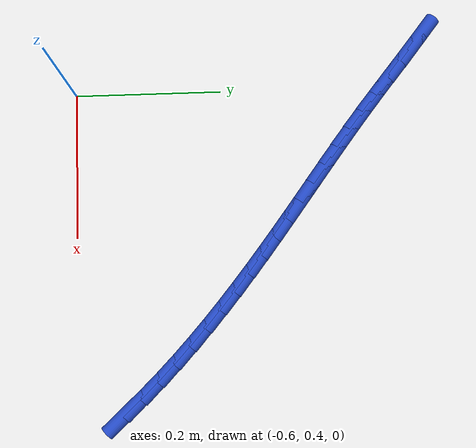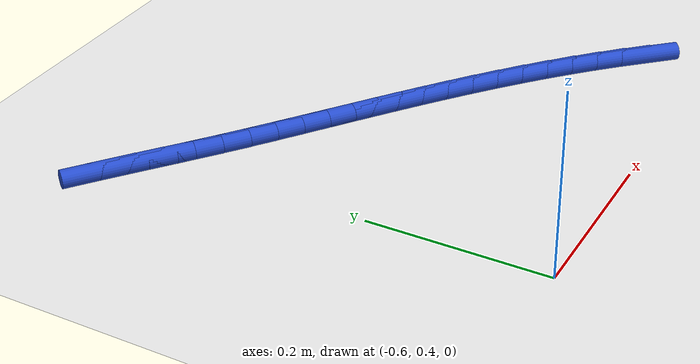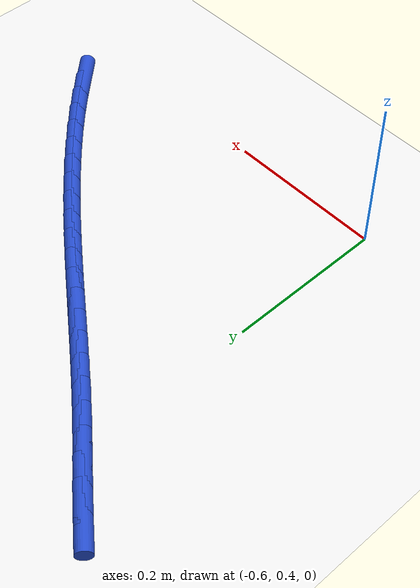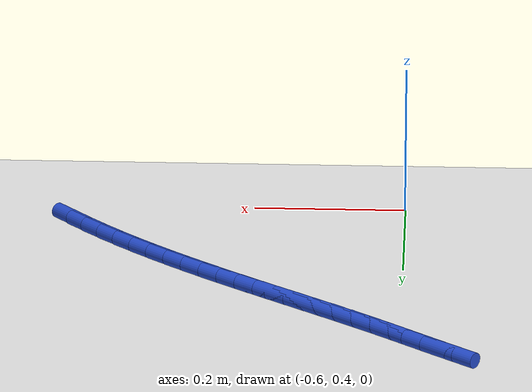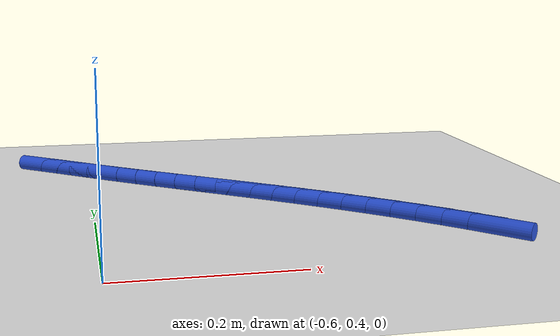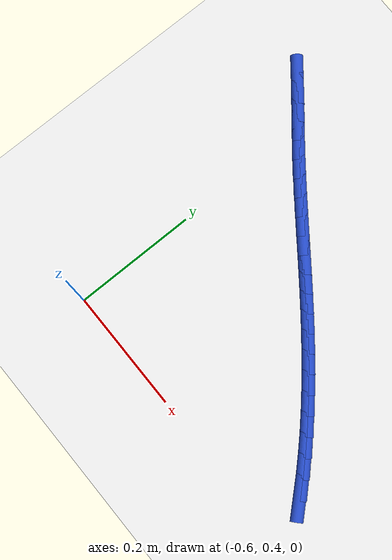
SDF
<sdf version="1.6">
 <world name="default">
  <model name="ground_plane">
   <static>1</static>
   <link name="link">
    <collision name="collision">
     <geometry><plane><normal>0 0 1</normal><size>100 100</size></plane></geometry>
     <surface><friction><ode><mu>100</mu><mu2>50</mu2></ode></friction></surface>
    </collision>
    <visual name="visual">
     <cast_shadows>0</cast_shadows>
     <geometry><plane><normal>0 0 1</normal><size>100 100</size></plane></geometry>
     <material>
      <script><uri>file://media/materials/scripts/gazebo.material</uri><name>Gazebo/WhiteGlow</name></script>
     </material>
    </visual>
   </link>
  </model>
  <model name="line">
   <link name="link_17">
    <pose>-0.16834287819457538 0.4694930249978393 0.01 0 1.57 -0.825687221884039</pose>
    <collision name="collision">
     <geometry><cylinder><radius>0.01</radius><length>0.08</length></cylinder></geometry>
    </collision>
    <visual name="visual">
     <material>
      <script><name>Gazebo/Blue</name><uri>file://media/materials/scripts/gazebo.material</uri></script>
     </material>
     <geometry><cylinder><radius>0.01</radius><length>0.08</length></cylinder></geometry>
    </visual>
   </link>
   <link name="link_18">
    <pose>-0.1893231760604147 0.4922358396481916 0.01 0 1.57 -0.7965220499734265</pose>
    <collision name="collision">
     <geometry><cylinder><radius>0.01</radius><length>0.08</length></cylinder></geometry>
    </collision>
    <visual name="visual">
     <material>
      <script><name>Gazebo/Blue</name><uri>file://media/materials/scripts/gazebo.material</uri></script>
     </material>
     <geometry><cylinder><radius>0.01</radius><length>0.08</length></cylinder></geometry>
    </visual>
   </link>
   <link name="link_19">
    <pose>-0.2110319275925236 0.5144330158870337 0.01 0 1.57 -0.7700032238204607</pose>
    <collision name="collision">
     <geometry><cylinder><radius>0.01</radius><length>0.08</length></cylinder></geometry>
    </collision>
    <visual name="visual">
     <material>
      <script><name>Gazebo/Blue</name><uri>file://media/materials/scripts/gazebo.material</uri></script>
     </material>
     <geometry><cylinder><radius>0.01</radius><length>0.08</length></cylinder></geometry>
    </visual>
   </link>
   <link name="link_20">
    <pose>-0.2333680721841166 0.5360918075801652 0.01 0 1.57 -0.7459821125124565</pose>
    <collision name="collision">
     <geometry><cylinder><radius>0.01</radius><length>0.08</length></cylinder></geometry>
    </collision>
    <visual name="visual">
     <material>
      <script><name>Gazebo/Blue</name><uri>file://media/materials/scripts/gazebo.material</uri></script>
     </material>
     <geometry><cylinder><radius>0.01</radius><length>0.08</length></cylinder></geometry>
    </visual>
   </link>
   <link name="link_21">
    <pose>-0.25623054922840827 0.5572194685933857 0.01 0 1.57 -0.7243242707508456</pose>
    <collision name="collision">
     <geometry><cylinder><radius>0.01</radius><length>0.08</length></cylinder></geometry>
    </collision>
    <visual name="visual">
     <material>
      <script><name>Gazebo/Blue</name><uri>file://media/materials/scripts/gazebo.material</uri></script>
     </material>
     <geometry><cylinder><radius>0.01</radius><length>0.08</length></cylinder></geometry>
    </visual>
   </link>
   <link name="link_22">
    <pose>-0.2795182981186131 0.5778232527924949 0.01 0 1.57 -0.7049117784476686</pose>
    <collision name="collision">
     <geometry><cylinder><radius>0.01</radius><length>0.08</length></cylinder></geometry>
    </collision>
    <visual name="visual">
     <material>
      <script><name>Gazebo/Blue</name><uri>file://media/materials/scripts/gazebo.material</uri></script>
     </material>
     <geometry><cylinder><radius>0.01</radius><length>0.08</length></cylinder></geometry>
    </visual>
   </link>
   <link name="link_23">
    <pose>-0.3031302582479457 0.597910414043292 0.01 0 1.57 -0.6876449810688887</pose>
    <collision name="collision">
     <geometry><cylinder><radius>0.01</radius><length>0.08</length></cylinder></geometry>
    </collision>
    <visual name="visual">
     <material>
      <script><name>Gazebo/Blue</name><uri>file://media/materials/scripts/gazebo.material</uri></script>
     </material>
     <geometry><cylinder><radius>0.01</radius><length>0.08</length></cylinder></geometry>
    </visual>
   </link>
   <link name="link_24">
    <pose>-0.3269653690096206 0.6174882062115772 0.01 0 1.57 -0.6724533190993339</pose>
    <collision name="collision">
     <geometry><cylinder><radius>0.01</radius><length>0.08</length></cylinder></geometry>
    </collision>
    <visual name="visual">
     <material>
      <script><name>Gazebo/Blue</name><uri>file://media/materials/scripts/gazebo.material</uri></script>
     </material>
     <geometry><cylinder><radius>0.01</radius><length>0.08</length></cylinder></geometry>
    </visual>
   </link>
   <link name="link_25">
    <pose>-0.35092402292409525 0.6365654076581861 0.01 0 1.57 -0.6595555227948436</pose>
    <collision name="collision">
     <geometry><cylinder><radius>0.01</radius><length>0.08</length></cylinder></geometry>
    </collision>
    <visual name="visual">
     <material>
      <script><name>Gazebo/Blue</name><uri>file://media/materials/scripts/gazebo.material</uri></script>
     </material>
     <geometry><cylinder><radius>0.01</radius><length>0.08</length></cylinder></geometry>
    </visual>
   </link>
   <link name="link_26">
    <pose>-0.37494512602725527 0.6551912017830771 0.01 0 1.57 -0.6493044399021799</pose>
    <collision name="collision">
     <geometry><cylinder><radius>0.01</radius><length>0.08</length></cylinder></geometry>
    </collision>
    <visual name="visual">
     <material>
      <script><name>Gazebo/Blue</name><uri>file://media/materials/scripts/gazebo.material</uri></script>
     </material>
     <geometry><cylinder><radius>0.01</radius><length>0.08</length></cylinder></geometry>
    </visual>
   </link>
   <link name="link_27">
    <pose>-0.39900915874694404 0.6734583882314369 0.01 0 1.57 -0.641809652778201</pose>
    <collision name="collision">
     <geometry><cylinder><radius>0.01</radius><length>0.08</length></cylinder></geometry>
    </collision>
    <visual name="visual">
     <material>
      <script><name>Gazebo/Blue</name><uri>file://media/materials/scripts/gazebo.material</uri></script>
     </material>
     <geometry><cylinder><radius>0.01</radius><length>0.08</length></cylinder></geometry>
    </visual>
   </link>
   <link name="link_28">
    <pose>-0.4230986679361195 0.6914619345624093 0.01 0 1.57 -0.6371427167157656</pose>
    <collision name="collision">
     <geometry><cylinder><radius>0.01</radius><length>0.08</length></cylinder></geometry>
    </collision>
    <visual name="visual">
     <material>
      <script><name>Gazebo/Blue</name><uri>file://media/materials/scripts/gazebo.material</uri></script>
     </material>
     <geometry><cylinder><radius>0.01</radius><length>0.08</length></cylinder></geometry>
    </visual>
   </link>
   <link name="link_29">
    <pose>-0.4471962004477398 0.7092968083351378 0.01 0 1.57 -0.6353506193693912</pose>
    <collision name="collision">
     <geometry><cylinder><radius>0.01</radius><length>0.08</length></cylinder></geometry>
    </collision>
    <visual name="visual">
     <material>
      <script><name>Gazebo/Blue</name><uri>file://media/materials/scripts/gazebo.material</uri></script>
     </material>
     <geometry><cylinder><radius>0.01</radius><length>0.08</length></cylinder></geometry>
    </visual>
   </link>
   <link name="link_30">
    <pose>-0.4712843031347625 0.7270579771087652 0.01 0 1.57 -0.636455844635083</pose>
    <collision name="collision">
     <geometry><cylinder><radius>0.01</radius><length>0.08</length></cylinder></geometry>
    </collision>
    <visual name="visual">
     <material>
      <script><name>Gazebo/Blue</name><uri>file://media/materials/scripts/gazebo.material</uri></script>
     </material>
     <geometry><cylinder><radius>0.01</radius><length>0.08</length></cylinder></geometry>
    </visual>
   </link>
   <link name="link_31">
    <pose>-0.4953455228501458 0.7448404084424349 0.01 0 1.57 -0.6404562847046027</pose>
    <collision name="collision">
     <geometry><cylinder><radius>0.01</radius><length>0.08</length></cylinder></geometry>
    </collision>
    <visual name="visual">
     <material>
      <script><name>Gazebo/Blue</name><uri>file://media/materials/scripts/gazebo.material</uri></script>
     </material>
     <geometry><cylinder><radius>0.01</radius><length>0.08</length></cylinder></geometry>
    </visual>
   </link>
   <link name="link_32">
    <pose>-0.5193624064468474 0.7627390698952904 0.01 0 1.57 -0.6473249576548522</pose>
    <collision name="collision">
     <geometry><cylinder><radius>0.01</radius><length>0.08</length></cylinder></geometry>
    </collision>
    <visual name="visual">
     <material>
      <script><name>Gazebo/Blue</name><uri>file://media/materials/scripts/gazebo.material</uri></script>
     </material>
     <geometry><cylinder><radius>0.01</radius><length>0.08</length></cylinder></geometry>
    </visual>
   </link>
   <link name="link_33">
    <pose>-0.5433175007778254 0.7808489290264747 0.01 0 1.57 -0.6570095521813457</pose>
    <collision name="collision">
     <geometry><cylinder><radius>0.01</radius><length>0.08</length></cylinder></geometry>
    </collision>
    <visual name="visual">
     <material>
      <script><name>Gazebo/Blue</name><uri>file://media/materials/scripts/gazebo.material</uri></script>
     </material>
     <geometry><cylinder><radius>0.01</radius><length>0.08</length></cylinder></geometry>
    </visual>
   </link>
   <link name="link_34">
    <pose>-0.5671933526960378 0.7992649533951315 0.01 0 1.57 -0.6689239229753259</pose>
    <collision name="collision">
     <geometry><cylinder><radius>0.01</radius><length>0.08</length></cylinder></geometry>
    </collision>
    <visual name="visual">
     <material>
      <script><name>Gazebo/Blue</name><uri>file://media/materials/scripts/gazebo.material</uri></script>
     </material>
     <geometry><cylinder><radius>0.01</radius><length>0.08</length></cylinder></geometry>
    </visual>
   </link>
   <link name="link_35">
    <pose>-0.5909693851962724 0.818060006262623 0.01 0 1.57 -0.6774498926883321</pose>
    <collision name="collision">
     <geometry><cylinder><radius>0.01</radius><length>0.08</length></cylinder></geometry>
    </collision>
    <visual name="visual">
     <material>
      <script><name>Gazebo/Blue</name><uri>file://media/materials/scripts/gazebo.material</uri></script>
     </material>
     <geometry><cylinder><radius>0.01</radius><length>0.08</length></cylinder></geometry>
    </visual>
   </link>
   <link name="link_36">
    <pose>-0.6145904023506027 0.8370619887521809 0.01 0 1.57 -0.6792319518733971</pose>
    <collision name="collision">
     <geometry><cylinder><radius>0.01</radius><length>0.08</length></cylinder></geometry>
    </collision>
    <visual name="visual">
     <material>
      <script><name>Gazebo/Blue</name><uri>file://media/materials/scripts/gazebo.material</uri></script>
     </material>
     <geometry><cylinder><radius>0.01</radius><length>0.08</length></cylinder></geometry>
    </visual>
   </link>
   <link name="link_37">
    <pose>-0.6379796532220209 0.8559462795889359 0.01 0 1.57 -0.6741317918165386</pose>
    <collision name="collision">
     <geometry><cylinder><radius>0.01</radius><length>0.08</length></cylinder></geometry>
    </collision>
    <visual name="visual">
     <material>
      <script><name>Gazebo/Blue</name><uri>file://media/materials/scripts/gazebo.material</uri></script>
     </material>
     <geometry><cylinder><radius>0.01</radius><length>0.08</length></cylinder></geometry>
    </visual>
   </link>
   <link name="link_38">
    <pose>-0.6610604841177483 0.8743878976298244 0.01 0 1.57 -0.6656646762208325</pose>
    <collision name="collision">
     <geometry><cylinder><radius>0.01</radius><length>0.08</length></cylinder></geometry>
    </collision>
    <visual name="visual">
     <material>
      <script><name>Gazebo/Blue</name><uri>file://media/materials/scripts/gazebo.material</uri></script>
     </material>
     <geometry><cylinder><radius>0.01</radius><length>0.08</length></cylinder></geometry>
    </visual>
   </link>
  </model>
 </world>
</sdf>
